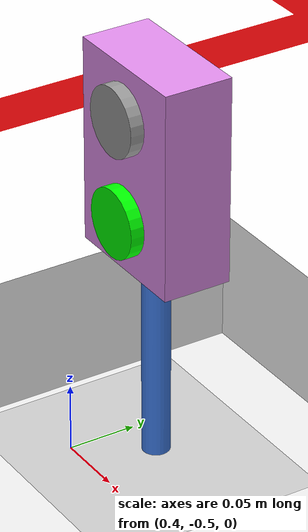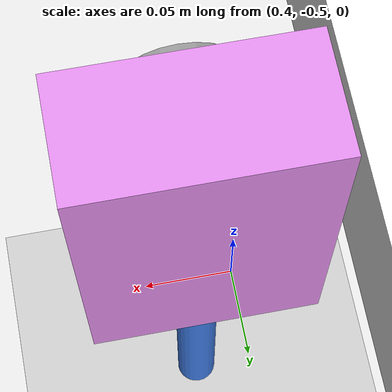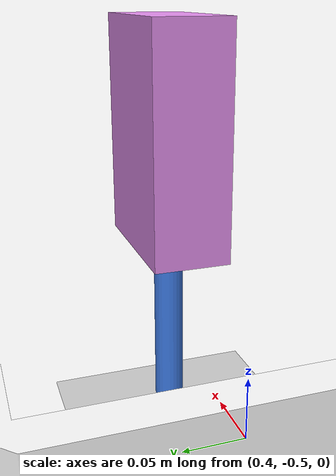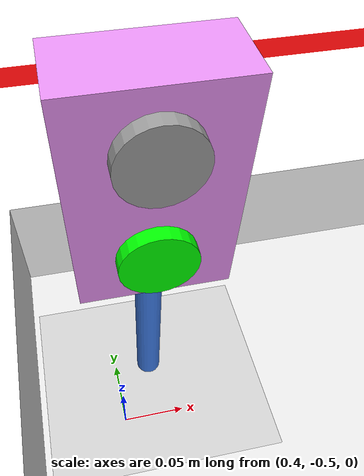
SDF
<?xml version="1.0" ?>
<sdf version="1.5">
    <world name="Car track">
        <include>
            <uri>model://sun</uri>
       </include>
        <include>
            <uri>model://ground_plane</uri>
        </include>
        <include>
            <uri>model://car_track</uri>
            <name>track</name>
            <pose>0 0 0 0 0 0</pose>
        </include>
        <include>
            <uri>model://traffic_light</uri>
            <name>traffic_light</name>
            <pose>0.43 -0.45 0 0 0 0</pose>
        </include>
    </world>
</sdf>

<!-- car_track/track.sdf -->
<sdf version='1.4'>
    <model name="track">
        <static>true</static>
        <link name='track_main'>
            <pose>0 0 0 0 0 0</pose>
            <visual name='visual'>
              <geometry>
                <mesh>
                    <uri>model://car_track/meshes/track.dae</uri>
                </mesh>
              </geometry>
            </visual>
            <collision name='collision'>
              <geometry>
                <mesh>
                    <uri>model://car_track/meshes/track.dae</uri>
                </mesh>
              </geometry>
            </collision>
        </link>
    </model>
</sdf>

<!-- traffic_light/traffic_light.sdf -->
<!-- |    This document was autogenerated by xacro from traffic_light.xacro            | -->
<!-- |    EDITING THIS FILE BY HAND IS NOT RECOMMENDED                                 | -->
<sdf version="1.4" xmlns:xacro="http://www.ros.org/wiki/xacro">
  <model name="traffic_light">
    <static>true</static>
    <link name="traffic_light">
      <pose>0 0 0 0 0 0</pose>
      <visual name="base">
        <pose>0 0 0.075 0 0 0</pose>
        <geometry>
          <cylinder>
            <radius>0.01</radius>
            <length>0.15</length>
          </cylinder>
        </geometry>
        <material>
          <diffuse>0.25 0.50 0.93 1.00</diffuse>
        </material>
      </visual>
      <visual name="box">
        <pose>0 0 0.225 0 0 0</pose>
        <geometry>
          <box>
            <size>0.1 0.05 0.15</size>
          </box>
        </geometry>
        <material>
          <diffuse>0.89 0.56 0.93 1.00</diffuse>
        </material>
      </visual>
    </link>
    <link name="green">
      <visual name="green">
        <pose>0 -0.03 0.1875 1.57 0 0</pose>
        <geometry>
          <cylinder>
            <radius>0.025</radius>
            <length>0.01</length>
          </cylinder>
        </geometry>
        <material>
          <diffuse>0.00 1.00 0.00 1.00</diffuse>
          <emissive>0.00 1.00 0.00 1.00</emissive>
        </material>
        <plugin filename="liblight_plugin.so" name="green_plugin"/>
      </visual>
    </link>
    <link name="red">
      <visual name="red">
        <pose>0 -0.03 0.2625 1.57 0 0</pose>
        <geometry>
          <cylinder>
            <radius>0.025</radius>
            <length>0.01</length>
          </cylinder>
        </geometry>
        <material>
          <diffuse>0.60 0.60 0.60 1.00</diffuse>
          <emissive>0.00 0.00 0.00 0.00</emissive>
        </material>
        <plugin filename="liblight_plugin.so" name="red_plugin"/>
      </visual>
    </link>
  </model>
</sdf>
